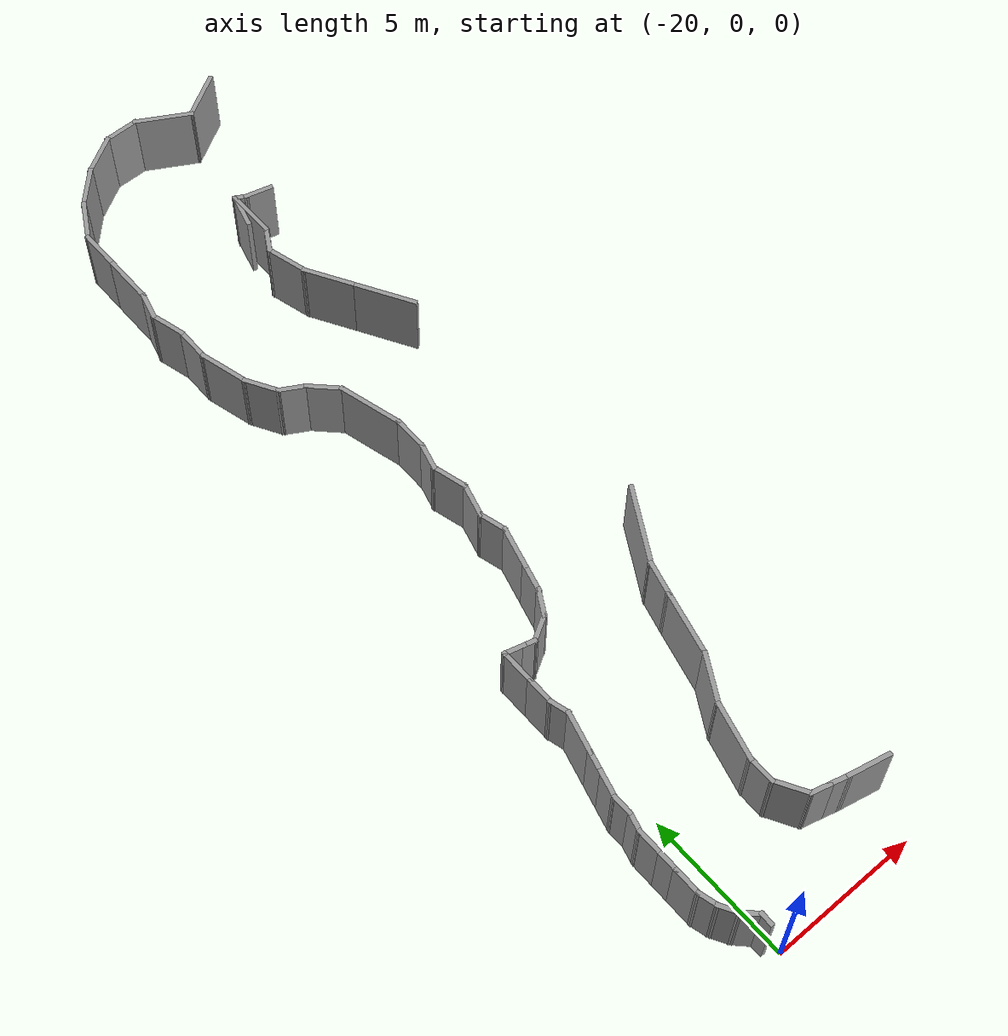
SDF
<sdf version="1.7">
 <world name="default">
  <model name="Untitled">
   <pose>0.112024 16.4674 0 0 -0 0</pose>
   <link name="Wall_141">
    <collision name="Wall_141_Collision">
     <geometry><box><size>0.5 0.15 2.5</size></box></geometry>
     <pose>0 0 1.25 0 -0 0</pose>
    </collision>
    <visual name="Wall_141_Visual">
     <pose>0 0 1.25 0 -0 0</pose>
     <geometry><box><size>0.5 0.15 2.5</size></box></geometry>
     <material>
      <script><uri>file://media/materials/scripts/gazebo.material</uri><name>Gazebo/Grey</name></script>
      <ambient>1 1 1 1</ambient>
     </material>
     <meta><layer>0</layer></meta>
    </visual>
    <pose>-20.5165 -15.9262 0 0 -0 -1.5708</pose>
   </link>
   <link name="Wall_143">
    <collision name="Wall_143_Collision">
     <geometry><box><size>0.75 0.15 2.5</size></box></geometry>
     <pose>0 0 1.25 0 -0 0</pose>
    </collision>
    <visual name="Wall_143_Visual">
     <pose>0 0 1.25 0 -0 0</pose>
     <geometry><box><size>0.75 0.15 2.5</size></box></geometry>
     <material>
      <script><uri>file://media/materials/scripts/gazebo.material</uri><name>Gazebo/Grey</name></script>
      <ambient>1 1 1 1</ambient>
     </material>
     <meta><layer>0</layer></meta>
    </visual>
    <pose>-20.7287 -15.539 0 0 -0 2.35619</pose>
   </link>
   <link name="Wall_144">
    <collision name="Wall_144_Collision">
     <geometry><box><size>0.75 0.15 2.5</size></box></geometry>
     <pose>0 0 1.25 0 -0 0</pose>
    </collision>
    <visual name="Wall_144_Visual">
     <pose>0 0 1.25 0 -0 0</pose>
     <geometry><box><size>0.75 0.15 2.5</size></box></geometry>
     <material>
      <script><uri>file://media/materials/scripts/gazebo.material</uri><name>Gazebo/Grey</name></script>
      <ambient>1 1 1 1</ambient>
     </material>
     <meta><layer>0</layer></meta>
    </visual>
    <pose>-21.0908 -15.0671 0 0 -0 2.0944</pose>
   </link>
   <link name="Wall_145">
    <collision name="Wall_145_Collision">
     <geometry><box><size>0.75 0.15 2.5</size></box></geometry>
     <pose>0 0 1.25 0 -0 0</pose>
    </collision>
    <visual name="Wall_145_Visual">
     <pose>0 0 1.25 0 -0 0</pose>
     <geometry><box><size>0.75 0.15 2.5</size></box></geometry>
     <material>
      <script><uri>file://media/materials/scripts/gazebo.material</uri><name>Gazebo/Grey</name></script>
      <ambient>1 1 1 1</ambient>
     </material>
     <meta><layer>0</layer></meta>
    </visual>
    <pose>-21.3185 -14.5175 0 0 -0 1.8326</pose>
   </link>
   <link name="Wall_146">
    <collision name="Wall_146_Collision">
     <geometry><box><size>1 0.15 2.5</size></box></geometry>
     <pose>0 0 1.25 0 -0 0</pose>
    </collision>
    <visual name="Wall_146_Visual">
     <pose>0 0 1.25 0 -0 0</pose>
     <geometry><box><size>1 0.15 2.5</size></box></geometry>
     <material>
      <script><uri>file://media/materials/scripts/gazebo.material</uri><name>Gazebo/Grey</name></script>
      <ambient>1 1 1 1</ambient>
     </material>
     <meta><layer>0</layer></meta>
    </visual>
    <pose>-21.3961 -13.8027 0 0 -0 1.5708</pose>
   </link>
   <link name="Wall_147">
    <collision name="Wall_147_Collision">
     <geometry><box><size>0.75 0.15 2.5</size></box></geometry>
     <pose>0 0 1.25 0 -0 0</pose>
    </collision>
    <visual name="Wall_147_Visual">
     <pose>0 0 1.25 0 -0 0</pose>
     <geometry><box><size>0.75 0.15 2.5</size></box></geometry>
     <material>
      <script><uri>file://media/materials/scripts/gazebo.material</uri><name>Gazebo/Grey</name></script>
      <ambient>1 1 1 1</ambient>
     </material>
     <meta><layer>0</layer></meta>
    </visual>
    <pose>-21.3961 -13.0777 0 0 -0 1.5708</pose>
   </link>
   <link name="Wall_148">
    <collision name="Wall_148_Collision">
     <geometry><box><size>1 0.15 2.5</size></box></geometry>
     <pose>0 0 1.25 0 -0 0</pose>
    </collision>
    <visual name="Wall_148_Visual">
     <pose>0 0 1.25 0 -0 0</pose>
     <geometry><box><size>1 0.15 2.5</size></box></geometry>
     <material>
      <script><uri>file://media/materials/scripts/gazebo.material</uri><name>Gazebo/Grey</name></script>
      <ambient>1 1 1 1</ambient>
     </material>
     <meta><layer>0</layer></meta>
    </visual>
    <pose>-21.3961 -12.3527 0 0 -0 1.5708</pose>
   </link>
   <link name="Wall_149">
    <collision name="Wall_149_Collision">
     <geometry><box><size>0.75 0.15 2.5</size></box></geometry>
     <pose>0 0 1.25 0 -0 0</pose>
    </collision>
    <visual name="Wall_149_Visual">
     <pose>0 0 1.25 0 -0 0</pose>
     <geometry><box><size>0.75 0.15 2.5</size></box></geometry>
     <material>
      <script><uri>file://media/materials/scripts/gazebo.material</uri><name>Gazebo/Grey</name></script>
      <ambient>1 1 1 1</ambient>
     </material>
     <meta><layer>0</layer></meta>
    </visual>
    <pose>-21.3185 -11.638 0 0 -0 1.309</pose>
   </link>
   <link name="Wall_150">
    <collision name="Wall_150_Collision">
     <geometry><box><size>0.75 0.15 2.5</size></box></geometry>
     <pose>0 0 1.25 0 -0 0</pose>
    </collision>
    <visual name="Wall_150_Visual">
     <pose>0 0 1.25 0 -0 0</pose>
     <geometry><box><size>0.75 0.15 2.5</size></box></geometry>
     <material>
      <script><uri>file://media/materials/scripts/gazebo.material</uri><name>Gazebo/Grey</name></script>
      <ambient>1 1 1 1</ambient>
     </material>
     <meta><layer>0</layer></meta>
    </visual>
    <pose>-21.2408 -11.0482 0 0 -0 1.5708</pose>
   </link>
   <link name="Wall_151">
    <collision name="Wall_151_Collision">
     <geometry><box><size>1 0.15 2.5</size></box></geometry>
     <pose>0 0 1.25 0 -0 0</pose>
    </collision>
    <visual name="Wall_151_Visual">
     <pose>0 0 1.25 0 -0 0</pose>
     <geometry><box><size>1 0.15 2.5</size></box></geometry>
     <material>
      <script><uri>file://media/materials/scripts/gazebo.material</uri><name>Gazebo/Grey</name></script>
      <ambient>1 1 1 1</ambient>
     </material>
     <meta><layer>0</layer></meta>
    </visual>
    <pose>-21.1308 -10.3377 0 0 -0 1.309</pose>
   </link>
   <link name="Wall_152">
    <collision name="Wall_152_Collision">
     <geometry><box><size>0.75 0.15 2.5</size></box></geometry>
     <pose>0 0 1.25 0 -0 0</pose>
    </collision>
    <visual name="Wall_152_Visual">
     <pose>0 0 1.25 0 -0 0</pose>
     <geometry><box><size>0.75 0.15 2.5</size></box></geometry>
     <material>
      <script><uri>file://media/materials/scripts/gazebo.material</uri><name>Gazebo/Grey</name></script>
      <ambient>1 1 1 1</ambient>
     </material>
     <meta><layer>0</layer></meta>
    </visual>
    <pose>-20.9432 -9.63737 0 0 -0 1.309</pose>
   </link>
   <link name="Wall_153">
    <collision name="Wall_153_Collision">
     <geometry><box><size>1.5 0.15 2.5</size></box></geometry>
     <pose>0 0 1.25 0 -0 0</pose>
    </collision>
    <visual name="Wall_153_Visual">
     <pose>0 0 1.25 0 -0 0</pose>
     <geometry><box><size>1.5 0.15 2.5</size></box></geometry>
     <material>
      <script><uri>file://media/materials/scripts/gazebo.material</uri><name>Gazebo/Grey</name></script>
      <ambient>1 1 1 1</ambient>
     </material>
     <meta><layer>0</layer></meta>
    </visual>
    <pose>-20.6908 -8.69559 0 0 -0 1.309</pose>
   </link>
   <link name="Wall_154">
    <collision name="Wall_154_Collision">
     <geometry><box><size>0.75 0.15 2.5</size></box></geometry>
     <pose>0 0 1.25 0 -0 0</pose>
    </collision>
    <visual name="Wall_154_Visual">
     <pose>0 0 1.25 0 -0 0</pose>
     <geometry><box><size>0.75 0.15 2.5</size></box></geometry>
     <material>
      <script><uri>file://media/materials/scripts/gazebo.material</uri><name>Gazebo/Grey</name></script>
      <ambient>1 1 1 1</ambient>
     </material>
     <meta><layer>0</layer></meta>
    </visual>
    <pose>-20.5938 -7.75381 0 0 -0 1.8326</pose>
   </link>
   <link name="Wall_155">
    <collision name="Wall_155_Collision">
     <geometry><box><size>1 0.15 2.5</size></box></geometry>
     <pose>0 0 1.25 0 -0 0</pose>
    </collision>
    <visual name="Wall_155_Visual">
     <pose>0 0 1.25 0 -0 0</pose>
     <geometry><box><size>1 0.15 2.5</size></box></geometry>
     <material>
      <script><uri>file://media/materials/scripts/gazebo.material</uri><name>Gazebo/Grey</name></script>
      <ambient>1 1 1 1</ambient>
     </material>
     <meta><layer>0</layer></meta>
    </visual>
    <pose>-20.6714 -7.03904 0 0 -0 1.5708</pose>
   </link>
   <link name="Wall_156">
    <collision name="Wall_156_Collision">
     <geometry><box><size>1.25 0.15 2.5</size></box></geometry>
     <pose>0 0 1.25 0 -0 0</pose>
    </collision>
    <visual name="Wall_156_Visual">
     <pose>0 0 1.25 0 -0 0</pose>
     <geometry><box><size>1.25 0.15 2.5</size></box></geometry>
     <material>
      <script><uri>file://media/materials/scripts/gazebo.material</uri><name>Gazebo/Grey</name></script>
      <ambient>1 1 1 1</ambient>
     </material>
     <meta><layer>0</layer></meta>
    </visual>
    <pose>-20.6714 -6.06403 0 0 -0 1.5708</pose>
   </link>
   <link name="Wall_157">
    <collision name="Wall_157_Collision">
     <geometry><box><size>0.75 0.15 2.5</size></box></geometry>
     <pose>0 0 1.25 0 -0 0</pose>
    </collision>
    <visual name="Wall_157_Visual">
     <pose>0 0 1.25 0 -0 0</pose>
     <geometry><box><size>0.75 0.15 2.5</size></box></geometry>
     <material>
      <script><uri>file://media/materials/scripts/gazebo.material</uri><name>Gazebo/Grey</name></script>
      <ambient>1 1 1 1</ambient>
     </material>
     <meta><layer>0</layer></meta>
    </visual>
    <pose>-20.3816 -5.59168 0 0 -0 -0.261799</pose>
   </link>
   <link name="Wall_158">
    <collision name="Wall_158_Collision">
     <geometry><box><size>0.5 0.15 2.5</size></box></geometry>
     <pose>0 0 1.25 0 -0 0</pose>
    </collision>
    <visual name="Wall_158_Visual">
     <pose>0 0 1.25 0 -0 0</pose>
     <geometry><box><size>0.5 0.15 2.5</size></box></geometry>
     <material>
      <script><uri>file://media/materials/scripts/gazebo.material</uri><name>Gazebo/Grey</name></script>
      <ambient>1 1 1 1</ambient>
     </material>
     <meta><layer>0</layer></meta>
    </visual>
    <pose>-19.9228 -5.71462 0 0 -0 -0.261799</pose>
   </link>
   <link name="Wall_159">
    <collision name="Wall_159_Collision">
     <geometry><box><size>1 0.15 2.5</size></box></geometry>
     <pose>0 0 1.25 0 -0 0</pose>
    </collision>
    <visual name="Wall_159_Visual">
     <pose>0 0 1.25 0 -0 0</pose>
     <geometry><box><size>1 0.15 2.5</size></box></geometry>
     <material>
      <script><uri>file://media/materials/scripts/gazebo.material</uri><name>Gazebo/Grey</name></script>
      <ambient>1 1 1 1</ambient>
     </material>
     <meta><layer>0</layer></meta>
    </visual>
    <pose>-19.3857 -5.54741 0 0 -0 0.523599</pose>
   </link>
   <link name="Wall_160">
    <collision name="Wall_160_Collision">
     <geometry><box><size>1 0.15 2.5</size></box></geometry>
     <pose>0 0 1.25 0 -0 0</pose>
    </collision>
    <visual name="Wall_160_Visual">
     <pose>0 0 1.25 0 -0 0</pose>
     <geometry><box><size>1 0.15 2.5</size></box></geometry>
     <material>
      <script><uri>file://media/materials/scripts/gazebo.material</uri><name>Gazebo/Grey</name></script>
      <ambient>1 1 1 1</ambient>
     </material>
     <meta><layer>0</layer></meta>
    </visual>
    <pose>-18.8052 -4.96685 0 0 -0 1.0472</pose>
   </link>
   <link name="Wall_161">
    <collision name="Wall_161_Collision">
     <geometry><box><size>1 0.15 2.5</size></box></geometry>
     <pose>0 0 1.25 0 -0 0</pose>
    </collision>
    <visual name="Wall_161_Visual">
     <pose>0 0 1.25 0 -0 0</pose>
     <geometry><box><size>1 0.15 2.5</size></box></geometry>
     <material>
      <script><uri>file://media/materials/scripts/gazebo.material</uri><name>Gazebo/Grey</name></script>
      <ambient>1 1 1 1</ambient>
     </material>
     <meta><layer>0</layer></meta>
    </visual>
    <pose>-18.4827 -4.18827 0 0 -0 1.309</pose>
   </link>
   <link name="Wall_162">
    <collision name="Wall_162_Collision">
     <geometry><box><size>1.5 0.15 2.5</size></box></geometry>
     <pose>0 0 1.25 0 -0 0</pose>
    </collision>
    <visual name="Wall_162_Visual">
     <pose>0 0 1.25 0 -0 0</pose>
     <geometry><box><size>1.5 0.15 2.5</size></box></geometry>
     <material>
      <script><uri>file://media/materials/scripts/gazebo.material</uri><name>Gazebo/Grey</name></script>
      <ambient>1 1 1 1</ambient>
     </material>
     <meta><layer>0</layer></meta>
    </visual>
    <pose>-18.198 -3.12575 0 0 -0 1.309</pose>
   </link>
   <link name="Wall_163">
    <collision name="Wall_163_Collision">
     <geometry><box><size>1 0.15 2.5</size></box></geometry>
     <pose>0 0 1.25 0 -0 0</pose>
    </collision>
    <visual name="Wall_163_Visual">
     <pose>0 0 1.25 0 -0 0</pose>
     <geometry><box><size>1 0.15 2.5</size></box></geometry>
     <material>
      <script><uri>file://media/materials/scripts/gazebo.material</uri><name>Gazebo/Grey</name></script>
      <ambient>1 1 1 1</ambient>
     </material>
     <meta><layer>0</layer></meta>
    </visual>
    <pose>-18.1332 -2.06324 0 0 -0 1.8326</pose>
   </link>
   <link name="Wall_164">
    <collision name="Wall_164_Collision">
     <geometry><box><size>1.25 0.15 2.5</size></box></geometry>
     <pose>0 0 1.25 0 -0 0</pose>
    </collision>
    <visual name="Wall_164_Visual">
     <pose>0 0 1.25 0 -0 0</pose>
     <geometry><box><size>1.25 0.15 2.5</size></box></geometry>
     <material>
      <script><uri>file://media/materials/scripts/gazebo.material</uri><name>Gazebo/Grey</name></script>
      <ambient>1 1 1 1</ambient>
     </material>
     <meta><layer>0</layer></meta>
    </visual>
    <pose>-18.1009 -1.12146 0 0 -0 1.309</pose>
   </link>
   <link name="Wall_165">
    <collision name="Wall_165_Collision">
     <geometry><box><size>1.25 0.15 2.5</size></box></geometry>
     <pose>0 0 1.25 0 -0 0</pose>
    </collision>
    <visual name="Wall_165_Visual">
     <pose>0 0 1.25 0 -0 0</pose>
     <geometry><box><size>1.25 0.15 2.5</size></box></geometry>
     <material>
      <script><uri>file://media/materials/scripts/gazebo.material</uri><name>Gazebo/Grey</name></script>
      <ambient>1 1 1 1</ambient>
     </material>
     <meta><layer>0</layer></meta>
    </visual>
    <pose>-18.1009 -0.05894 0 0 -0 1.8326</pose>
   </link>
   <link name="Wall_166">
    <collision name="Wall_166_Collision">
     <geometry><box><size>1 0.15 2.5</size></box></geometry>
     <pose>0 0 1.25 0 -0 0</pose>
    </collision>
    <visual name="Wall_166_Visual">
     <pose>0 0 1.25 0 -0 0</pose>
     <geometry><box><size>1 0.15 2.5</size></box></geometry>
     <material>
      <script><uri>file://media/materials/scripts/gazebo.material</uri><name>Gazebo/Grey</name></script>
      <ambient>1 1 1 1</ambient>
     </material>
     <meta><layer>0</layer></meta>
    </visual>
    <pose>-18.1332 0.882838 0 0 -0 1.309</pose>
   </link>
   <link name="Wall_167">
    <collision name="Wall_167_Collision">
     <geometry><box><size>1.25 0.15 2.5</size></box></geometry>
     <pose>0 0 1.25 0 -0 0</pose>
    </collision>
    <visual name="Wall_167_Visual">
     <pose>0 0 1.25 0 -0 0</pose>
     <geometry><box><size>1.25 0.15 2.5</size></box></geometry>
     <material>
      <script><uri>file://media/materials/scripts/gazebo.material</uri><name>Gazebo/Grey</name></script>
      <ambient>1 1 1 1</ambient>
     </material>
     <meta><layer>0</layer></meta>
    </visual>
    <pose>-18.0233 1.84336 0 0 -0 1.5708</pose>
   </link>
   <link name="Wall_168">
    <collision name="Wall_168_Collision">
     <geometry><box><size>2.25 0.15 2.5</size></box></geometry>
     <pose>0 0 1.25 0 -0 0</pose>
    </collision>
    <visual name="Wall_168_Visual">
     <pose>0 0 1.25 0 -0 0</pose>
     <geometry><box><size>2.25 0.15 2.5</size></box></geometry>
     <material>
      <script><uri>file://media/materials/scripts/gazebo.material</uri><name>Gazebo/Grey</name></script>
      <ambient>1 1 1 1</ambient>
     </material>
     <meta><layer>0</layer></meta>
    </visual>
    <pose>-18.295 3.40758 0 0 -0 1.8326</pose>
   </link>
   <link name="Wall_169">
    <collision name="Wall_169_Collision">
     <geometry><box><size>1.25 0.15 2.5</size></box></geometry>
     <pose>0 0 1.25 0 -0 0</pose>
    </collision>
    <visual name="Wall_169_Visual">
     <pose>0 0 1.25 0 -0 0</pose>
     <geometry><box><size>1.25 0.15 2.5</size></box></geometry>
     <material>
      <script><uri>file://media/materials/scripts/gazebo.material</uri><name>Gazebo/Grey</name></script>
      <ambient>1 1 1 1</ambient>
     </material>
     <meta><layer>0</layer></meta>
    </visual>
    <pose>-18.9557 4.81071 0 0 -0 2.35619</pose>
   </link>
   <link name="Wall_170">
    <collision name="Wall_170_Collision">
     <geometry><box><size>1 0.15 2.5</size></box></geometry>
     <pose>0 0 1.25 0 -0 0</pose>
    </collision>
    <visual name="Wall_170_Visual">
     <pose>0 0 1.25 0 -0 0</pose>
     <geometry><box><size>1 0.15 2.5</size></box></geometry>
     <material>
      <script><uri>file://media/materials/scripts/gazebo.material</uri><name>Gazebo/Grey</name></script>
      <ambient>1 1 1 1</ambient>
     </material>
     <meta><layer>0</layer></meta>
    </visual>
    <pose>-19.7126 5.41212 0 0 -0 2.61799</pose>
   </link>
   <link name="Wall_171">
    <collision name="Wall_171_Collision">
     <geometry><box><size>1.25 0.15 2.5</size></box></geometry>
     <pose>0 0 1.25 0 -0 0</pose>
    </collision>
    <visual name="Wall_171_Visual">
     <pose>0 0 1.25 0 -0 0</pose>
     <geometry><box><size>1.25 0.15 2.5</size></box></geometry>
     <material>
      <script><uri>file://media/materials/scripts/gazebo.material</uri><name>Gazebo/Grey</name></script>
      <ambient>1 1 1 1</ambient>
     </material>
     <meta><layer>0</layer></meta>
    </visual>
    <pose>-20.3557 6.10093 0 0 -0 2.0944</pose>
   </link>
   <link name="Wall_172">
    <collision name="Wall_172_Collision">
     <geometry><box><size>1.75 0.15 2.5</size></box></geometry>
     <pose>0 0 1.25 0 -0 0</pose>
    </collision>
    <visual name="Wall_172_Visual">
     <pose>0 0 1.25 0 -0 0</pose>
     <geometry><box><size>1.75 0.15 2.5</size></box></geometry>
     <material>
      <script><uri>file://media/materials/scripts/gazebo.material</uri><name>Gazebo/Grey</name></script>
      <ambient>1 1 1 1</ambient>
     </material>
     <meta><layer>0</layer></meta>
    </visual>
    <pose>-20.8378 7.34999 0 0 -0 1.8326</pose>
   </link>
   <link name="Wall_173">
    <collision name="Wall_173_Collision">
     <geometry><box><size>1.25 0.15 2.5</size></box></geometry>
     <pose>0 0 1.25 0 -0 0</pose>
    </collision>
    <visual name="Wall_173_Visual">
     <pose>0 0 1.25 0 -0 0</pose>
     <geometry><box><size>1.25 0.15 2.5</size></box></geometry>
     <material>
      <script><uri>file://media/materials/scripts/gazebo.material</uri><name>Gazebo/Grey</name></script>
      <ambient>1 1 1 1</ambient>
     </material>
     <meta><layer>0</layer></meta>
    </visual>
    <pose>-21.0448 8.67273 0 0 -0 1.5708</pose>
   </link>
   <link name="Wall_174">
    <collision name="Wall_174_Collision">
     <geometry><box><size>1.25 0.15 2.5</size></box></geometry>
     <pose>0 0 1.25 0 -0 0</pose>
    </collision>
    <visual name="Wall_174_Visual">
     <pose>0 0 1.25 0 -0 0</pose>
     <geometry><box><size>1.25 0.15 2.5</size></box></geometry>
     <material>
      <script><uri>file://media/materials/scripts/gazebo.material</uri><name>Gazebo/Grey</name></script>
      <ambient>1 1 1 1</ambient>
     </material>
     <meta><layer>0</layer></meta>
    </visual>
    <pose>-21.1872 9.75399 0 0 -0 1.8326</pose>
   </link>
   <link name="Wall_175">
    <collision name="Wall_175_Collision">
     <geometry><box><size>1 0.15 2.5</size></box></geometry>
     <pose>0 0 1.25 0 -0 0</pose>
    </collision>
    <visual name="Wall_175_Visual">
     <pose>0 0 1.25 0 -0 0</pose>
     <geometry><box><size>1 0.15 2.5</size></box></geometry>
     <material>
      <script><uri>file://media/materials/scripts/gazebo.material</uri><name>Gazebo/Grey</name></script>
      <ambient>1 1 1 1</ambient>
     </material>
     <meta><layer>0</layer></meta>
    </visual>
    <pose>-21.2195 10.6958 0 0 -0 1.309</pose>
   </link>
   <link name="Wall_176">
    <collision name="Wall_176_Collision">
     <geometry><box><size>1.75 0.15 2.5</size></box></geometry>
     <pose>0 0 1.25 0 -0 0</pose>
    </collision>
    <visual name="Wall_176_Visual">
     <pose>0 0 1.25 0 -0 0</pose>
     <geometry><box><size>1.75 0.15 2.5</size></box></geometry>
     <material>
      <script><uri>file://media/materials/scripts/gazebo.material</uri><name>Gazebo/Grey</name></script>
      <ambient>1 1 1 1</ambient>
     </material>
     <meta><layer>0</layer></meta>
    </visual>
    <pose>-21.1095 11.9063 0 0 -0 1.5708</pose>
   </link>
   <link name="Wall_177">
    <collision name="Wall_177_Collision">
     <geometry><box><size>1.5 0.15 2.5</size></box></geometry>
     <pose>0 0 1.25 0 -0 0</pose>
    </collision>
    <visual name="Wall_177_Visual">
     <pose>0 0 1.25 0 -0 0</pose>
     <geometry><box><size>1.5 0.15 2.5</size></box></geometry>
     <material>
      <script><uri>file://media/materials/scripts/gazebo.material</uri><name>Gazebo/Grey</name></script>
      <ambient>1 1 1 1</ambient>
     </material>
     <meta><layer>0</layer></meta>
    </visual>
    <pose>-21.1095 13.3813 0 0 -0 1.5708</pose>
   </link>
   <link name="Wall_178">
    <collision name="Wall_178_Collision">
     <geometry><box><size>1.5 0.15 2.5</size></box></geometry>
     <pose>0 0 1.25 0 -0 0</pose>
    </collision>
    <visual name="Wall_178_Visual">
     <pose>0 0 1.25 0 -0 0</pose>
     <geometry><box><size>1.5 0.15 2.5</size></box></geometry>
     <material>
      <script><uri>file://media/materials/scripts/gazebo.material</uri><name>Gazebo/Grey</name></script>
      <ambient>1 1 1 1</ambient>
     </material>
     <meta><layer>0</layer></meta>
    </visual>
    <pose>-20.772 14.6408 0 0 -0 1.0472</pose>
   </link>
   <link name="Wall_179">
    <collision name="Wall_179_Collision">
     <geometry><box><size>1.5 0.15 2.5</size></box></geometry>
     <pose>0 0 1.25 0 -0 0</pose>
    </collision>
    <visual name="Wall_179_Visual">
     <pose>0 0 1.25 0 -0 0</pose>
     <geometry><box><size>1.5 0.15 2.5</size></box></geometry>
     <material>
      <script><uri>file://media/materials/scripts/gazebo.material</uri><name>Gazebo/Grey</name></script>
      <ambient>1 1 1 1</ambient>
     </material>
     <meta><layer>0</layer></meta>
    </visual>
    <pose>-19.9572 15.7027 0 0 -0 0.785398</pose>
   </link>
   <link name="Wall_180">
    <collision name="Wall_180_Collision">
     <geometry><box><size>1.5 0.15 2.5</size></box></geometry>
     <pose>0 0 1.25 0 -0 0</pose>
    </collision>
    <visual name="Wall_180_Visual">
     <pose>0 0 1.25 0 -0 0</pose>
     <geometry><box><size>1.5 0.15 2.5</size></box></geometry>
     <material>
      <script><uri>file://media/materials/scripts/gazebo.material</uri><name>Gazebo/Grey</name></script>
      <ambient>1 1 1 1</ambient>
     </material>
     <meta><layer>0</layer></meta>
    </visual>
    <pose>-18.8954 16.5175 0 0 -0 0.523599</pose>
   </link>
   <link name="Wall_181">
    <collision name="Wall_181_Collision">
     <geometry><box><size>1.25 0.15 2.5</size></box></geometry>
     <pose>0 0 1.25 0 -0 0</pose>
    </collision>
    <visual name="Wall_181_Visual">
     <pose>0 0 1.25 0 -0 0</pose>
     <geometry><box><size>1.25 0.15 2.5</size></box></geometry>
     <material>
      <script><uri>file://media/materials/scripts/gazebo.material</uri><name>Gazebo/Grey</name></script>
      <ambient>1 1 1 1</ambient>
     </material>
     <meta><layer>0</layer></meta>
    </visual>
    <pose>-17.7608 16.855 0 0 -0 0</pose>
   </link>
   <link name="Wall_182">
    <collision name="Wall_182_Collision">
     <geometry><box><size>2 0.15 2.5</size></box></geometry>
     <pose>0 0 1.25 0 -0 0</pose>
    </collision>
    <visual name="Wall_182_Visual">
     <pose>0 0 1.25 0 -0 0</pose>
     <geometry><box><size>2 0.15 2.5</size></box></geometry>
     <material>
      <script><uri>file://media/materials/scripts/gazebo.material</uri><name>Gazebo/Grey</name></script>
      <ambient>1 1 1 1</ambient>
     </material>
     <meta><layer>0</layer></meta>
    </visual>
    <pose>-16.4097 16.3925 0 0 -0 -0.523599</pose>
   </link>
   <link name="Wall_183">
    <collision name="Wall_183_Collision">
     <geometry><box><size>1.75 0.15 2.5</size></box></geometry>
     <pose>0 0 1.25 0 -0 0</pose>
    </collision>
    <visual name="Wall_183_Visual">
     <pose>0 0 1.25 0 -0 0</pose>
     <geometry><box><size>1.75 0.15 2.5</size></box></geometry>
     <material>
      <script><uri>file://media/materials/scripts/gazebo.material</uri><name>Gazebo/Grey</name></script>
      <ambient>1 1 1 1</ambient>
     </material>
     <meta><layer>0</layer></meta>
    </visual>
    <pose>-14.9158 16.33 0 0 -0 0.523599</pose>
   </link>
   <link name="Wall_22">
    <collision name="Wall_22_Collision">
     <geometry><box><size>1.48594 0.15 2.5</size></box></geometry>
     <pose>0 0 1.25 0 -0 0</pose>
    </collision>
    <visual name="Wall_22_Visual">
     <pose>0 0 1.25 0 -0 0</pose>
     <geometry><box><size>1.48594 0.15 2.5</size></box></geometry>
     <material>
      <script><uri>file://media/materials/scripts/gazebo.material</uri><name>Gazebo/Grey</name></script>
      <ambient>1 1 1 1</ambient>
     </material>
     <meta><layer>0</layer></meta>
    </visual>
    <pose>-15.2662 -14.6174 0 0 -0 2.92684</pose>
   </link>
   <link name="Wall_23">
    <collision name="Wall_23_Collision">
     <geometry><box><size>0.75 0.15 2.5</size></box></geometry>
     <pose>0 0 1.25 0 -0 0</pose>
    </collision>
    <visual name="Wall_23_Visual">
     <pose>0 0 1.25 0 -0 0</pose>
     <geometry><box><size>0.75 0.15 2.5</size></box></geometry>
     <material>
      <script><uri>file://media/materials/scripts/gazebo.material</uri><name>Gazebo/Grey</name></script>
      <ambient>1 1 1 1</ambient>
     </material>
     <meta><layer>0</layer></meta>
    </visual>
    <pose>-16.2086 -14.3974 0 0 -0 2.87979</pose>
   </link>
   <link name="Wall_24">
    <collision name="Wall_24_Collision">
     <geometry><box><size>0.75 0.15 2.5</size></box></geometry>
     <pose>0 0 1.25 0 -0 0</pose>
    </collision>
    <visual name="Wall_24_Visual">
     <pose>0 0 1.25 0 -0 0</pose>
     <geometry><box><size>0.75 0.15 2.5</size></box></geometry>
     <material>
      <script><uri>file://media/materials/scripts/gazebo.material</uri><name>Gazebo/Grey</name></script>
      <ambient>1 1 1 1</ambient>
     </material>
     <meta><layer>0</layer></meta>
    </visual>
    <pose>-16.7882 -14.2421 0 0 -0 2.87979</pose>
   </link>
   <link name="Wall_25">
    <collision name="Wall_25_Collision">
     <geometry><box><size>1.25 0.15 2.5</size></box></geometry>
     <pose>0 0 1.25 0 -0 0</pose>
    </collision>
    <visual name="Wall_25_Visual">
     <pose>0 0 1.25 0 -0 0</pose>
     <geometry><box><size>1.25 0.15 2.5</size></box></geometry>
     <material>
      <script><uri>file://media/materials/scripts/gazebo.material</uri><name>Gazebo/Grey</name></script>
      <ambient>1 1 1 1</ambient>
     </material>
     <meta><layer>0</layer></meta>
    </visual>
    <pose>-17.353 -13.6881 0 0 -0 2.0944</pose>
   </link>
   <link name="Wall_26">
    <collision name="Wall_26_Collision">
     <geometry><box><size>1 0.15 2.5</size></box></geometry>
     <pose>0 0 1.25 0 -0 0</pose>
    </collision>
    <visual name="Wall_26_Visual">
     <pose>0 0 1.25 0 -0 0</pose>
     <geometry><box><size>1 0.15 2.5</size></box></geometry>
     <material>
      <script><uri>file://media/materials/scripts/gazebo.material</uri><name>Gazebo/Grey</name></script>
      <ambient>1 1 1 1</ambient>
     </material>
     <meta><layer>0</layer></meta>
    </visual>
    <pose>-17.628 -12.7868 0 0 -0 1.5708</pose>
   </link>
   <link name="Wall_27">
    <collision name="Wall_27_Collision">
     <geometry><box><size>2 0.15 2.5</size></box></geometry>
     <pose>0 0 1.25 0 -0 0</pose>
    </collision>
    <visual name="Wall_27_Visual">
     <pose>0 0 1.25 0 -0 0</pose>
     <geometry><box><size>2 0.15 2.5</size></box></geometry>
     <material>
      <script><uri>file://media/materials/scripts/gazebo.material</uri><name>Gazebo/Grey</name></script>
      <ambient>1 1 1 1</ambient>
     </material>
     <meta><layer>0</layer></meta>
    </visual>
    <pose>-17.3886 -11.4683 0 0 -0 1.309</pose>
   </link>
   <link name="Wall_28">
    <collision name="Wall_28_Collision">
     <geometry><box><size>1.75 0.15 2.5</size></box></geometry>
     <pose>0 0 1.25 0 -0 0</pose>
    </collision>
    <visual name="Wall_28_Visual">
     <pose>0 0 1.25 0 -0 0</pose>
     <geometry><box><size>1.75 0.15 2.5</size></box></geometry>
     <material>
      <script><uri>file://media/materials/scripts/gazebo.material</uri><name>Gazebo/Grey</name></script>
      <ambient>1 1 1 1</ambient>
     </material>
     <meta><layer>0</layer></meta>
    </visual>
    <pose>-16.7492 -9.88204 0 0 -0 1.0472</pose>
   </link>
   <link name="Wall_73">
    <collision name="Wall_73_Collision">
     <geometry><box><size>1 0.15 2.5</size></box></geometry>
     <pose>0 0 1.25 0 -0 0</pose>
    </collision>
    <visual name="Wall_73_Visual">
     <pose>0 0 1.25 0 -0 0</pose>
     <geometry><box><size>1 0.15 2.5</size></box></geometry>
     <material>
      <script><uri>file://media/materials/scripts/gazebo.material</uri><name>Gazebo/Grey</name></script>
      <ambient>1 1 1 1</ambient>
     </material>
     <meta><layer>0</layer></meta>
    </visual>
    <pose>-15.9079 11.9755 0 0 -0 2.87979</pose>
   </link>
   <link name="Wall_74">
    <collision name="Wall_74_Collision">
     <geometry><box><size>0.5 0.15 2.5</size></box></geometry>
     <pose>0 0 1.25 0 -0 0</pose>
    </collision>
    <visual name="Wall_74_Visual">
     <pose>0 0 1.25 0 -0 0</pose>
     <geometry><box><size>0.5 0.15 2.5</size></box></geometry>
     <material>
      <script><uri>file://media/materials/scripts/gazebo.material</uri><name>Gazebo/Grey</name></script>
      <ambient>1 1 1 1</ambient>
     </material>
     <meta><layer>0</layer></meta>
    </visual>
    <pose>-16.4699 12.173 0 0 -0 2.61799</pose>
   </link>
   <link name="Wall_75">
    <collision name="Wall_75_Collision">
     <geometry><box><size>1.25 0.15 2.5</size></box></geometry>
     <pose>0 0 1.25 0 -0 0</pose>
    </collision>
    <visual name="Wall_75_Visual">
     <pose>0 0 1.25 0 -0 0</pose>
     <geometry><box><size>1.25 0.15 2.5</size></box></geometry>
     <material>
      <script><uri>file://media/materials/scripts/gazebo.material</uri><name>Gazebo/Grey</name></script>
      <ambient>1 1 1 1</ambient>
     </material>
     <meta><layer>0</layer></meta>
    </visual>
    <pose>-16.7638 11.7292 0 0 -0 -1.8326</pose>
   </link>
   <link name="Wall_77">
    <collision name="Wall_77_Collision">
     <geometry><box><size>1.75 0.15 2.5</size></box></geometry>
     <pose>0 0 1.25 0 -0 0</pose>
    </collision>
    <visual name="Wall_77_Visual">
     <pose>0 0 1.25 0 -0 0</pose>
     <geometry><box><size>1.75 0.15 2.5</size></box></geometry>
     <material>
      <script><uri>file://media/materials/scripts/gazebo.material</uri><name>Gazebo/Grey</name></script>
      <ambient>1 1 1 1</ambient>
     </material>
     <meta><layer>0</layer></meta>
    </visual>
    <pose>-16.6215 11.4605 0 0 -0 -1.5708</pose>
   </link>
   <link name="Wall_78">
    <collision name="Wall_78_Collision">
     <geometry><box><size>1 0.15 2.5</size></box></geometry>
     <pose>0 0 1.25 0 -0 0</pose>
    </collision>
    <visual name="Wall_78_Visual">
     <pose>0 0 1.25 0 -0 0</pose>
     <geometry><box><size>1 0.15 2.5</size></box></geometry>
     <material>
      <script><uri>file://media/materials/scripts/gazebo.material</uri><name>Gazebo/Grey</name></script>
      <ambient>1 1 1 1</ambient>
     </material>
     <meta><layer>0</layer></meta>
    </visual>
    <pose>-16.834 10.2924 0 0 -0 -2.0944</pose>
   </link>
   <link name="Wall_79">
    <collision name="Wall_79_Collision">
     <geometry><box><size>1.5 0.15 2.5</size></box></geometry>
     <pose>0 0 1.25 0 -0 0</pose>
    </collision>
    <visual name="Wall_79_Visual">
     <pose>0 0 1.25 0 -0 0</pose>
     <geometry><box><size>1.5 0.15 2.5</size></box></geometry>
     <material>
      <script><uri>file://media/materials/scripts/gazebo.material</uri><name>Gazebo/Grey</name></script>
      <ambient>1 1 1 1</ambient>
     </material>
     <meta><layer>0</layer></meta>
    </visual>
    <pose>-16.8718 9.27237 0 0 -0 -1.309</pose>
   </link>
   <link name="Wall_80">
    <collision name="Wall_80_Collision">
     <geometry><box><size>1.75 0.15 2.5</size></box></geometry>
     <pose>0 0 1.25 0 -0 0</pose>
    </collision>
    <visual name="Wall_80_Visual">
     <pose>0 0 1.25 0 -0 0</pose>
     <geometry><box><size>1.75 0.15 2.5</size></box></geometry>
     <material>
      <script><uri>file://media/materials/scripts/gazebo.material</uri><name>Gazebo/Grey</name></script>
      <ambient>1 1 1 1</ambient>
     </material>
     <meta><layer>0</layer></meta>
    </visual>
    <pose>-16.2971 7.92755 0 0 -0 -1.0472</pose>
   </link>
   <link name="Wall_81">
    <collision name="Wall_81_Collision">
     <geometry><box><size>2.25 0.15 2.5</size></box></geometry>
     <pose>0 0 1.25 0 -0 0</pose>
    </collision>
    <visual name="Wall_81_Visual">
     <pose>0 0 1.25 0 -0 0</pose>
     <geometry><box><size>2.25 0.15 2.5</size></box></geometry>
     <material>
      <script><uri>file://media/materials/scripts/gazebo.material</uri><name>Gazebo/Grey</name></script>
      <ambient>1 1 1 1</ambient>
     </material>
     <meta><layer>0</layer></meta>
    </visual>
    <pose>-15.3721 6.32541 0 0 -0 -1.0472</pose>
   </link>
   <link name="Wall_87">
    <collision name="Wall_87_Collision">
     <geometry><box><size>2.75 0.15 2.5</size></box></geometry>
     <pose>0 0 1.25 0 -0 0</pose>
    </collision>
    <visual name="Wall_87_Visual">
     <pose>0 0 1.25 0 -0 0</pose>
     <geometry><box><size>2.75 0.15 2.5</size></box></geometry>
     <material>
      <script><uri>file://media/materials/scripts/gazebo.material</uri><name>Gazebo/Grey</name></script>
      <ambient>1 1 1 1</ambient>
     </material>
     <meta><layer>0</layer></meta>
    </visual>
    <pose>-14.896 -4.96079 0 0 -0 -2.0944</pose>
   </link>
   <link name="Wall_88">
    <collision name="Wall_88_Collision">
     <geometry><box><size>1.25 0.15 2.5</size></box></geometry>
     <pose>0 0 1.25 0 -0 0</pose>
    </collision>
    <visual name="Wall_88_Visual">
     <pose>0 0 1.25 0 -0 0</pose>
     <geometry><box><size>1.25 0.15 2.5</size></box></geometry>
     <material>
      <script><uri>file://media/materials/scripts/gazebo.material</uri><name>Gazebo/Grey</name></script>
      <ambient>1 1 1 1</ambient>
     </material>
     <meta><layer>0</layer></meta>
    </visual>
    <pose>-15.6884 -6.61789 0 0 -0 -1.8326</pose>
   </link>
   <link name="Wall_89">
    <collision name="Wall_89_Collision">
     <geometry><box><size>2.25491 0.15 2.5</size></box></geometry>
     <pose>0 0 1.25 0 -0 0</pose>
    </collision>
    <visual name="Wall_89_Visual">
     <pose>0 0 1.25 0 -0 0</pose>
     <geometry><box><size>2.25491 0.15 2.5</size></box></geometry>
     <material>
      <script><uri>file://media/materials/scripts/gazebo.material</uri><name>Gazebo/Grey</name></script>
      <ambient>1 1 1 1</ambient>
     </material>
     <meta><layer>0</layer></meta>
    </visual>
    <pose>-16.0899 -8.16918 0 0 -0 -1.81965</pose>
   </link>
   <static>1</static>
  </model>
 </world>
</sdf>
